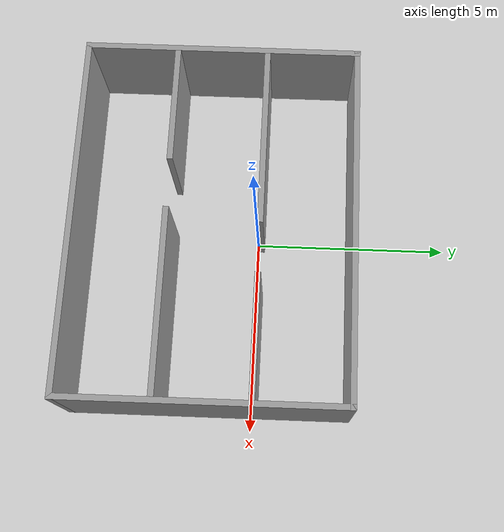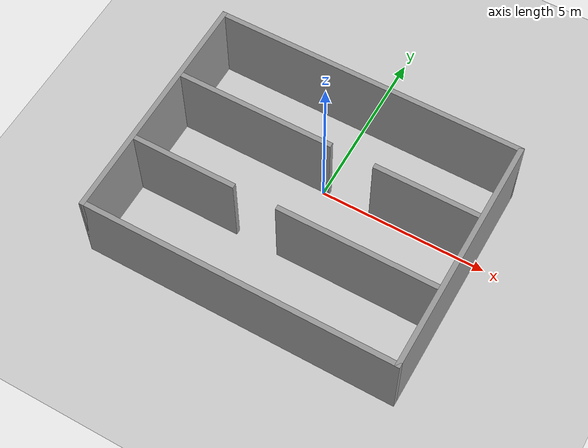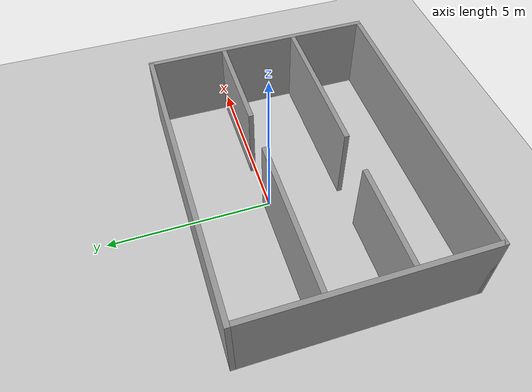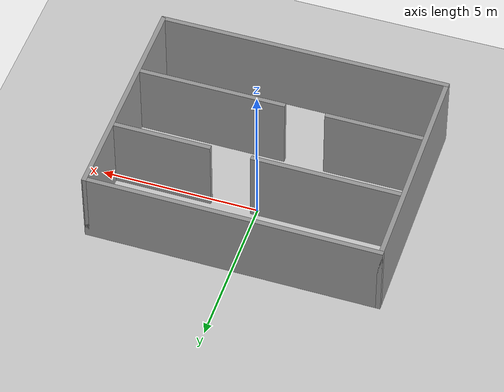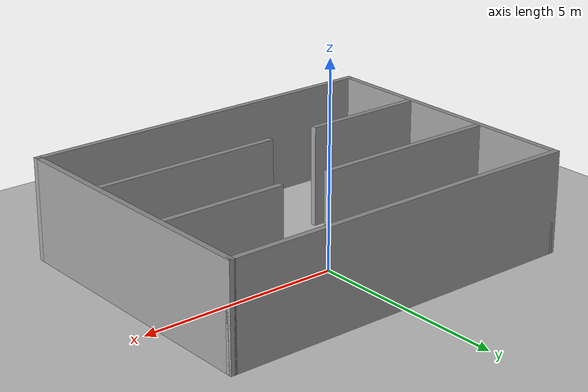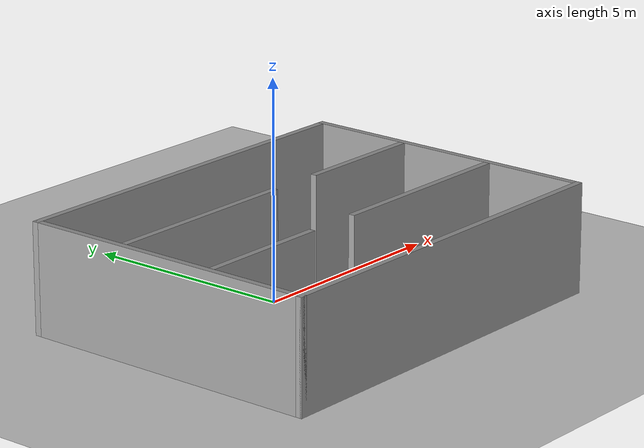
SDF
<sdf version="1.7">
 <world name="default">
  <light name="sun" type="directional">
   <pose>0 0 10 0 -0 0</pose>
   <diffuse>0.8 0.8 0.8 1</diffuse>
   <specular>0.2 0.2 0.2 1</specular>
   <attenuation>
    <range>1000</range>
    <constant>0.9</constant>
    <linear>0.01</linear>
    <quadratic>0.001</quadratic>
   </attenuation>
   <direction>-0.5 0.1 -0.9</direction>
   <spot><inner_angle>0</inner_angle><outer_angle>0</outer_angle><falloff>0</falloff></spot>
  </light>
  <model name="ground_plane">
   <static>1</static>
   <link name="link">
    <collision name="collision">
     <geometry><plane><normal>0 0 1</normal><size>100 100</size></plane></geometry>
     <surface>
      <contact><collide_bitmask>65535</collide_bitmask></contact>
      <friction><ode><mu>100</mu><mu2>50</mu2></ode></friction>
     </surface>
    </collision>
    <visual name="visual">
     <cast_shadows>0</cast_shadows>
     <geometry><plane><normal>0 0 1</normal><size>100 100</size></plane></geometry>
     <material>
      <script><uri>file://media/materials/scripts/gazebo.material</uri><name>Gazebo/Grey</name></script>
     </material>
    </visual>
   </link>
  </model>
  <gravity>0 0 -9.8</gravity>
  <magnetic_field>6e-06 2.3e-05 -4.2e-05</magnetic_field>
  <atmosphere type="adiabatic"/>
  <physics type="ode">
   <max_step_size>0.001</max_step_size>
   <real_time_factor>1</real_time_factor>
   <real_time_update_rate>1000</real_time_update_rate>
  </physics>
  <scene><ambient>0.4 0.4 0.4 1</ambient><background>0.7 0.7 0.7 1</background><shadows>1</shadows></scene>
  <spherical_coordinates>
   <surface_model>EARTH_WGS84</surface_model>
   <latitude_deg>0</latitude_deg>
   <longitude_deg>0</longitude_deg>
   <elevation>0</elevation>
   <heading_deg>0</heading_deg>
  </spherical_coordinates>
  <model name="map_two_slits_outer">
   <link name="Wall_bottom">
    <collision name="Wall_bottom_Collision">
     <geometry><box><size>9.35 0.15 2.5</size></box></geometry>
     <pose>0 0 1.25 0 -0 0</pose>
    </collision>
    <visual name="Wall_bottom_Visual">
     <pose>0 0 1.25 0 -0 0</pose>
     <geometry><box><size>9.35 0.15 2.5</size></box></geometry>
     <material>
      <script><uri>file://media/materials/scripts/gazebo.material</uri><name>Gazebo/Grey</name></script>
      <ambient>1 1 1 1</ambient>
     </material>
    </visual>
    <pose>0.000000 -4.600000 0 0 -0 0.000000</pose>
   </link>
   <link name="Wall_top">
    <collision name="Wall_top_Collision">
     <geometry><box><size>9.35 0.15 2.5</size></box></geometry>
     <pose>0 0 1.25 0 -0 0</pose>
    </collision>
    <visual name="Wall_top_Visual">
     <pose>0 0 1.25 0 -0 0</pose>
     <geometry><box><size>9.35 0.15 2.5</size></box></geometry>
     <material>
      <script><uri>file://media/materials/scripts/gazebo.material</uri><name>Gazebo/Grey</name></script>
      <ambient>1 1 1 1</ambient>
     </material>
    </visual>
    <pose>0.000000 2.450000 0 0 -0 0.000000</pose>
   </link>
   <link name="Wall_left">
    <collision name="Wall_left_Collision">
     <geometry><box><size>7.2 0.15 2.5</size></box></geometry>
     <pose>0 0 1.25 0 -0 0</pose>
    </collision>
    <visual name="Wall_left_Visual">
     <pose>0 0 1.25 0 -0 0</pose>
     <geometry><box><size>7.2 0.15 2.5</size></box></geometry>
     <material>
      <script><uri>file://media/materials/scripts/gazebo.material</uri><name>Gazebo/Grey</name></script>
      <ambient>1 1 1 1</ambient>
     </material>
    </visual>
    <pose>-4.600000 -1.075000 0 0 -0 1.570796</pose>
   </link>
   <link name="Wall_right">
    <collision name="Wall_right_Collision">
     <geometry><box><size>7.2 0.15 2.5</size></box></geometry>
     <pose>0 0 1.25 0 -0 0</pose>
    </collision>
    <visual name="Wall_right_Visual">
     <pose>0 0 1.25 0 -0 0</pose>
     <geometry><box><size>7.2 0.15 2.5</size></box></geometry>
     <material>
      <script><uri>file://media/materials/scripts/gazebo.material</uri><name>Gazebo/Grey</name></script>
      <ambient>1 1 1 1</ambient>
     </material>
    </visual>
    <pose>4.600000 -1.075000 0 0 -0 1.570796</pose>
   </link>
   <static>1</static>
  </model>
  <model name="map_two_slits_slits">
   <link name="Slit1_left">
    <collision name="Slit1_left_Collision">
     <geometry><box><size>3.09 0.15 2.5</size></box></geometry>
     <pose>0 0 1.25 0 -0 0</pose>
    </collision>
    <visual name="Slit1_left_Visual">
     <pose>0 0 1.25 0 -0 0</pose>
     <geometry><box><size>3.09 0.15 2.5</size></box></geometry>
     <material>
      <script><uri>file://media/materials/scripts/gazebo.material</uri><name>Gazebo/Grey</name></script>
      <ambient>1 1 1 1</ambient>
     </material>
    </visual>
    <pose>-2.980000 -2.250000 0 0 -0 0.000000</pose>
   </link>
   <link name="Slit1_right">
    <collision name="Slit1_right_Collision">
     <geometry><box><size>4.69 0.15 2.5</size></box></geometry>
     <pose>0 0 1.25 0 -0 0</pose>
    </collision>
    <visual name="Slit1_right_Visual">
     <pose>0 0 1.25 0 -0 0</pose>
     <geometry><box><size>4.69 0.15 2.5</size></box></geometry>
     <material>
      <script><uri>file://media/materials/scripts/gazebo.material</uri><name>Gazebo/Grey</name></script>
      <ambient>1 1 1 1</ambient>
     </material>
    </visual>
    <pose>2.180000 -2.250000 0 0 -0 0.000000</pose>
   </link>
   <link name="Slit2_left">
    <collision name="Slit2_left_Collision">
     <geometry><box><size>4.69 0.15 2.5</size></box></geometry>
     <pose>0 0 1.25 0 -0 0</pose>
    </collision>
    <visual name="Slit2_left_Visual">
     <pose>0 0 1.25 0 -0 0</pose>
     <geometry><box><size>4.69 0.15 2.5</size></box></geometry>
     <material>
      <script><uri>file://media/materials/scripts/gazebo.material</uri><name>Gazebo/Grey</name></script>
      <ambient>1 1 1 1</ambient>
     </material>
    </visual>
    <pose>-2.180000 0.100000 0 0 -0 0.000000</pose>
   </link>
   <link name="Slit2_right">
    <collision name="Slit2_right_Collision">
     <geometry><box><size>3.09 0.15 2.5</size></box></geometry>
     <pose>0 0 1.25 0 -0 0</pose>
    </collision>
    <visual name="Slit2_right_Visual">
     <pose>0 0 1.25 0 -0 0</pose>
     <geometry><box><size>3.09 0.15 2.5</size></box></geometry>
     <material>
      <script><uri>file://media/materials/scripts/gazebo.material</uri><name>Gazebo/Grey</name></script>
      <ambient>1 1 1 1</ambient>
     </material>
    </visual>
    <pose>2.980000 0.100000 0 0 -0 0.000000</pose>
   </link>
   <static>1</static>
  </model>
 </world>
</sdf>
